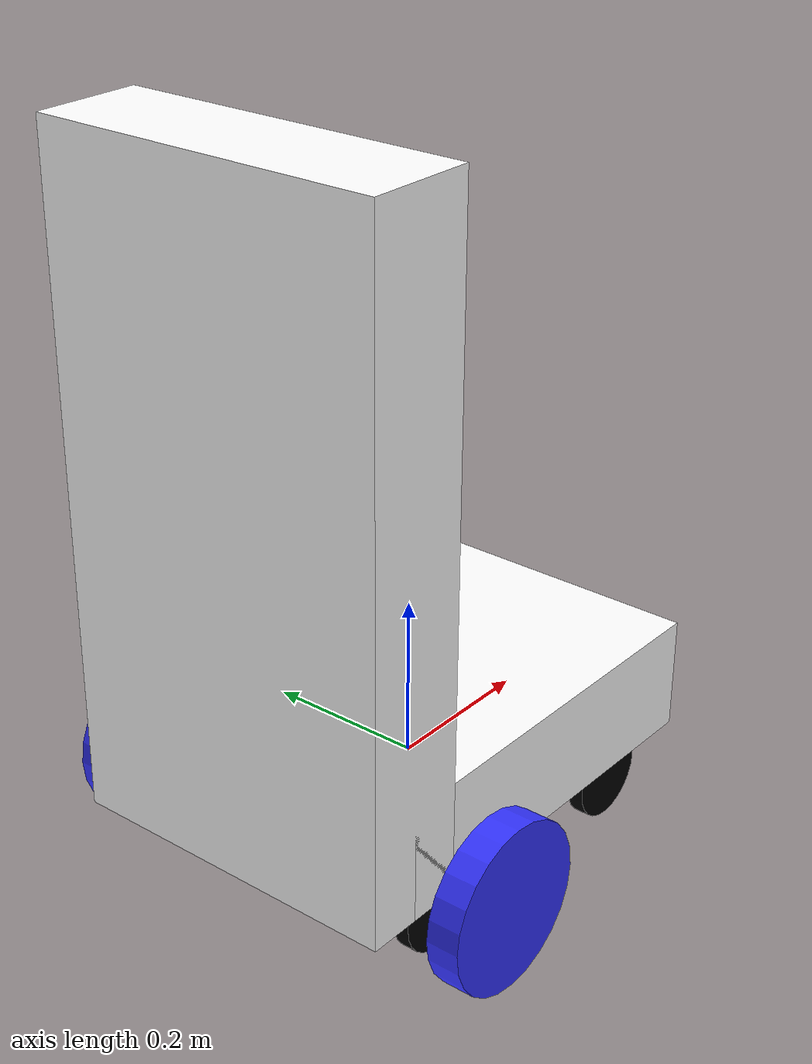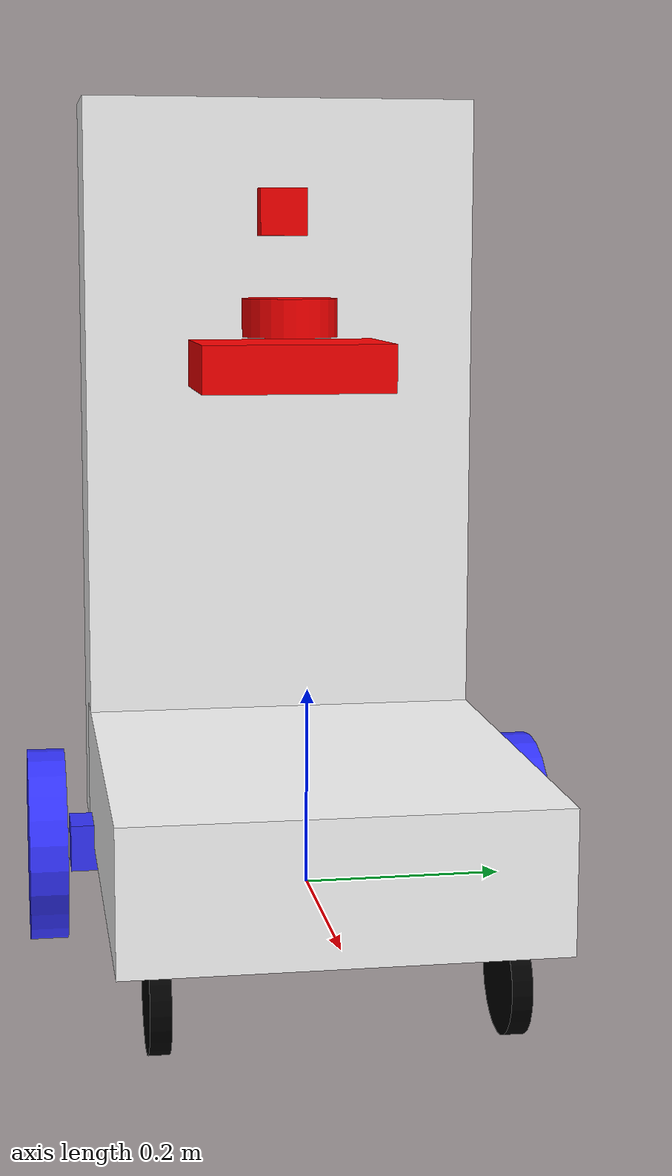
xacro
<?xml version="1.0"?>
<robot xmlns:xacro="http://www.ros.org/wiki/xacro" name="robot">

    <!-- INCLUDE -->
    <xacro:include filename="settings/materials.xacro" />
    <xacro:include filename="settings/frame_properties.xacro" />
    <xacro:include filename="inertial_macros.xacro" />

    <!-- PARAMS -->
    <xacro:arg name="use_ros2_control" default="true" />
    <xacro:arg name="sim_mode" default="false" />

    <xacro:if value="$(arg use_ros2_control)">
        <xacro:include filename="ros2_control.xacro" />
    </xacro:if>
    <xacro:unless value="$(arg use_ros2_control)">
        <xacro:include filename="gazebo_control.xacro" />
    </xacro:unless>

    <xacro:include filename="robot_core.xacro" />
    <xacro:include filename="lidar.xacro" />
    <xacro:include filename="depth_camera.xacro" />

</robot>

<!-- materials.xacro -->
<robot xmlns:xacro="http://www.ros.org/wiki/xacro">

  <!-- material -->
  <material name="white">
    <color rgba="1 1 1 1" />
  </material>

  <material name="orange">
    <color rgba="1 0.3 0.1 1" />
  </material>

  <material name="blue">
    <color rgba="0.2 0.2 1 1" />
  </material>

  <material name="black">
    <color rgba="0 0 0 1" />
  </material>

  <material name="red">
    <color rgba="1 0 0 1" />
  </material>

</robot>

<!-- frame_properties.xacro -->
<robot xmlns:xacro="http://www.ros.org/wiki/xacro">

  <!-- CHASSIS-->
  <xacro:property name="x_chassis_size" value="0.5" />
  <xacro:property name="y_chassis_size" value="0.42" />
  <xacro:property name="z_chassis_size" value="0.14" />
  <xacro:property name="chassis_mass" value="4.4" />
  <xacro:property name="x_handle_size" value="0.13" />
  <xacro:property name="y_handle_size" value="0.42" />
  <xacro:property name="z_handle_size" value="0.8" />
  <xacro:property name="handle_mass" value="3" />

  <!-- DRIVE WHEELS-->
  <xacro:property name="drive_wheel_radius" value="0.102" />
  <xacro:property name="drive_wheel_length" value="0.04" />
  <xacro:property name="drive_wheel_mass" value="2" />

  <!-- MOTOR -->
  <xacro:property name="x_motor_size" value="0.05" />
  <xacro:property name="y_motor_size" value="0.05" />
  <xacro:property name="z_motor_size" value="0.05" />
  <xacro:property name="motor_mass" value="1" />

  <!-- CASTER WHEELS-->
  <xacro:property name="caster_wheel_radius" value="0.055" />
  <xacro:property name="caster_wheel_length" value="0.02" />
  <xacro:property name="caster_wheel_mass" value="1" />

  <!-- LIDAR -->
  <xacro:property name="x_lidar_base_size" value="0.15" />
  <xacro:property name="y_lidar_base_size" value="0.20" />
  <xacro:property name="z_lidar_base_size" value="0.05" />
  <xacro:property name="lidar_frame_radius" value="0.05" />
  <xacro:property name="lidar_frame_length" value="0.04" />
  <xacro:property name="lidar_mass" value="0.1" />
  <xacro:property name="lidar_samples" value="360" />
  <xacro:property name="lidar_resolution" value="0.0174533" />
  <xacro:property name="lidar_min_angle" value="-1.57" />
  <xacro:property name="lidar_max_angle" value="1.57" />
  <xacro:property name="lidar_min_range" value="0.12" />
  <xacro:property name="lidar_max_range" value="3.5" />
  <xacro:property name="lidar_range_resolution" value="0.01" />

  <!-- CAMERA -->
  <xacro:property name="x_camera_size" value="0.05" />
  <xacro:property name="y_camera_size" value="0.05" />
  <xacro:property name="z_camera_size" value="0.05" />
  <xacro:property name="camera_mass" value="0.1" />

  <xacro:property name="horizontal_fov" value="1.089" />
  <xacro:property name="camera_frame_width" value="1280" />
  <xacro:property name="camera_frame_height" value="720" />
  <xacro:property name="min_view_range" value="0.05" />
  <xacro:property name="max_view_range" value="8.0" />
  <!-- DEPTH-->
  <xacro:property name="min_depth" value="0.1" />
  <xacro:property name="max_depth" value="100.0" />

  <!-- SPEED -->
  <xacro:property name="max_wheel_torque" value="0.883" />
  <xacro:property name="max_acceleration" value="1.48" />

  <!-- ROTATION SPEED -->
  <xacro:property name="wheel_max_speed" value="1.848" />
  <xacro:property name="wheel_min_speed" value="-1.848" />

</robot>

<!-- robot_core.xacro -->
<robot xmlns:xacro="http://www.ros.org/wiki/xacro">

  <!-- BASE LINK-->
  <link name="base_link">
  </link>

  <!-- BASE_FOOTPRINT LINK-->

  <joint name="base_footprint_joint" type="fixed">
    <parent link="base_link" />
    <child link="base_footprint" />
    <origin xyz="0 0 0" />
  </joint>

  <link name="base_footprint">
  </link>

  <!-- CHASSIS LINK -->
  <joint name="chassis_joint" type="fixed">
    <parent link="base_link" />
    <child link="chassis" />
    <origin xyz="0 0 0 " />
  </joint>

  <link name="chassis">
    <visual>
      <origin xyz="0 0 ${z_chassis_size/2}" />
      <geometry>
        <box size="${x_chassis_size} ${y_chassis_size} ${z_chassis_size}" />
      </geometry>
      <material name="white" />
    </visual>

    <collision>
      <origin xyz="0 0 ${z_chassis_size/2}" />
      <geometry>
        <box size="${x_chassis_size} ${y_chassis_size} ${z_chassis_size}" />
      </geometry>
    </collision>

    <xacro:inertial_box mass="${chassis_mass}" x="${x_chassis_size}" y="${y_chassis_size}"
      z="${z_chassis_size}">
      <origin xyz="0 0 ${z_chassis_size/2}" />
    </xacro:inertial_box>

  </link>

  <!-- HANDLE -->
  <joint name="handle_joint" type="fixed">
    <parent link="chassis" />
    <child link="handle" />
    <origin xyz="${-x_chassis_size/2} 0 0" />
  </joint>

  <link name="handle">
    <visual>
      <origin xyz="0 0 ${z_handle_size/2}" />
      <geometry>
        <box size="${x_handle_size} ${y_handle_size} ${z_handle_size}" />
      </geometry>
      <material name="white" />
    </visual>

    <collision>
      <origin xyz="0 0 ${z_handle_size/2}" />
      <geometry>
        <box size="${x_handle_size} ${y_handle_size} ${z_handle_size}" />
      </geometry>
    </collision>

    <xacro:inertial_box mass="${handle_mass}" x="${x_handle_size}" y="${y_handle_size}"
      z="${z_handle_size}">
      <origin xyz="0 0 0" />
    </xacro:inertial_box>

  </link>

  <!-- LEFT MOTOR -->
  <joint name="left_motor_joint" type="fixed">
    <parent link="base_link" />
    <child link="left_motor" />
    <origin xyz="-${2*x_chassis_size /6} -${y_chassis_size/2} 0"
      rpy="0 0 0" />
    <axis xyz="0 0 -1" />
  </joint>

  <link name="left_motor">
    <visual>
      <geometry>
        <box size="${x_motor_size} ${y_motor_size} ${z_motor_size}" />
      </geometry>
      <material name="blue" />
    </visual>

    <collision>
      <origin xyz="0 0 ${z_motor_size/2}" />
      <geometry>
        <box size="${x_motor_size} ${y_motor_size} ${z_motor_size}" />
      </geometry>
    </collision>

    <xacro:inertial_box mass="${motor_mass}" x="${x_motor_size}" y="${y_motor_size}"
      z="${z_motor_size}">
      <origin xyz="0 0 ${z_motor_size/2}" />
    </xacro:inertial_box>

  </link>

  <!-- LEFT WHEEL -->
  <joint name="left_wheel_joint" type="continuous">
    <parent link="left_motor" />
    <child link="left_wheel" />
    <origin xyz="0 ${-y_motor_size} 0"
      rpy="-${pi/2} 0 0" />
    <axis xyz="0 0 1" />
  </joint>

  <link name="left_wheel">
    <visual>
      <geometry>
        <cylinder radius="${drive_wheel_radius}" length="${drive_wheel_length}" />
      </geometry>
      <material name="blue" />
    </visual>

    <collision>
      <geometry>
        <cylinder radius="${drive_wheel_radius}" length="${drive_wheel_length}" />
      </geometry>
    </collision>

    <xacro:inertial_cylinder mass="${drive_wheel_mass}" length="${drive_wheel_length}"
      radius="${drive_wheel_radius}">
      <origin xyz="0 0 0" rpy="0 0 0" />
    </xacro:inertial_cylinder>
  </link>

  <gazebo reference="left_wheel">
    <material>Gazebo/Blue</material>
  </gazebo>

  <!-- RIGHT MOTOR -->
  <joint name="right_motor_joint" type="fixed">
    <parent link="base_link" />
    <child link="right_motor" />
    <origin xyz="-${2*x_chassis_size /6} ${y_chassis_size/2} 0"
      rpy="0 0 0" />
    <axis xyz="0 0 -1" />
  </joint>

  <link name="right_motor">
    <visual>
      <geometry>
        <box size="${x_motor_size} ${y_motor_size} ${z_motor_size}" />
      </geometry>
      <material name="blue" />
    </visual>

    <collision>
      <origin xyz="0 0 ${z_motor_size/2}" />
      <geometry>
        <box size="${x_motor_size} ${y_motor_size} ${z_motor_size}" />
      </geometry>
    </collision>

    <xacro:inertial_box mass="${motor_mass}" x="${x_motor_size}" y="${y_motor_size}"
      z="${z_motor_size}">
      <origin xyz="0 0 ${z_motor_size/2}" />
    </xacro:inertial_box>

  </link>

  <!-- RIGHT WHEEL -->
  <joint name="right_wheel_joint" type="continuous">
    <parent link="right_motor" />
    <child link="right_wheel" />
    <origin xyz="0 ${y_motor_size} 0"
      rpy="${pi/2} 0 0" />
    <axis xyz="0 0 -1" />
  </joint>

  <link name="right_wheel">
    <visual>
      <geometry>
        <cylinder radius="${drive_wheel_radius}" length="${drive_wheel_length}" />
      </geometry>
      <material name="blue" />
    </visual>

    <collision>
      <geometry>
        <cylinder radius="${drive_wheel_radius}" length="${drive_wheel_length}" />
      </geometry>
    </collision>

    <xacro:inertial_cylinder mass="${drive_wheel_mass}" length="${drive_wheel_length}"
      radius="${drive_wheel_radius}">
      <origin xyz="0 0 0" rpy="0 0 0" />
    </xacro:inertial_cylinder>

  </link>

  <gazebo reference="right_wheel">
    <material>Gazebo/Blue</material>
  </gazebo>

  <!-- FRONT LEFT CASTER WHEELS -->
  <joint name="front_left_caster_wheel_joint" type="fixed">
    <parent link="base_link" />
    <child link="front_left_caster_wheel" />
    <origin
      xyz="${2*x_chassis_size /6} ${2*y_chassis_size/5} -${drive_wheel_radius - caster_wheel_radius}"
      rpy="-${pi/2} 0 0" />
    <axis xyz="0 0 1" />
  </joint>

  <link name="front_left_caster_wheel">
    <visual>
      <geometry>
        <cylinder radius="${caster_wheel_radius}" length="${caster_wheel_length}" />
      </geometry>
      <material name="black" />
    </visual>

    <collision>
      <geometry>
        <cylinder radius="${caster_wheel_radius}" length="${caster_wheel_length}" />
      </geometry>
    </collision>

    <xacro:inertial_cylinder mass="${caster_wheel_mass}" length="${caster_wheel_length}"
      radius="${caster_wheel_radius}">
      <origin xyz="0 0 0" rpy="0 0 0" />
    </xacro:inertial_cylinder>

  </link>

  <gazebo reference="front_left_caster_wheel">
    <material>Gazebo/Black</material>
    <mu1 value="0.001" />
    <mu2 value="0.001" />
  </gazebo>

  <!-- FRONT RIGHT CASTER WHEELS -->
  <joint name="front_right_caster_wheel_joint" type="fixed">
    <parent link="base_link" />
    <child link="front_right_caster_wheel" />
    <origin
      xyz="${2*x_chassis_size /6} -${2*y_chassis_size/5} -${drive_wheel_radius - caster_wheel_radius}"
      rpy="${pi/2} 0 0" />
    <axis xyz="0 0 -1" />
  </joint>

  <link name="front_right_caster_wheel">
    <visual>
      <geometry>
        <cylinder radius="${caster_wheel_radius}" length="${caster_wheel_length}" />
      </geometry>
      <material name="black" />
    </visual>

    <collision>
      <geometry>
        <cylinder radius="${caster_wheel_radius}" length="${caster_wheel_length}" />
      </geometry>
    </collision>

    <xacro:inertial_cylinder mass="${caster_wheel_mass}" length="${caster_wheel_length}"
      radius="${caster_wheel_radius}">
      <origin xyz="0 0 0" rpy="0 0 0" />
    </xacro:inertial_cylinder>

  </link>

  <gazebo reference="front_right_caster_wheel">
    <material>Gazebo/Black</material>
    <mu1 value="0.001" />
    <mu2 value="0.001" />
  </gazebo>

  <!-- BACK LEFT CASTER WHEELS -->
  <joint name="back_left_caster_wheel_joint" type="fixed">
    <parent link="base_link" />
    <child link="back_left_caster_wheel" />
    <origin
      xyz="-${2*x_chassis_size /6} ${2*y_chassis_size/5} -${drive_wheel_radius - caster_wheel_radius}"
      rpy="-${pi/2} 0 0" />
    <axis xyz="0 0 1" />
  </joint>

  <link name="back_left_caster_wheel">
    <visual>
      <geometry>
        <cylinder radius="${caster_wheel_radius}" length="${caster_wheel_length}" />
      </geometry>
      <material name="black" />
    </visual>

    <collision>
      <geometry>
        <cylinder radius="${caster_wheel_radius}" length="${caster_wheel_length}" />
      </geometry>
    </collision>

    <xacro:inertial_cylinder mass="${caster_wheel_mass}" length="${caster_wheel_length}"
      radius="${caster_wheel_radius}">
      <origin xyz="0 0 0" rpy="0 0 0" />
    </xacro:inertial_cylinder>

  </link>

  <gazebo reference="back_left_caster_wheel">
    <material>Gazebo/Black</material>
    <mu1 value="0.001" />
    <mu2 value="0.001" />
  </gazebo>

  <!-- BACK RIGHT CASTER WHEELS -->
  <joint name="back_right_caster_wheel_joint" type="fixed">
    <parent link="base_link" />
    <child link="back_right_caster_wheel" />
    <origin
      xyz="-${2*x_chassis_size /6} -${2*y_chassis_size/5} -${drive_wheel_radius - caster_wheel_radius}"
      rpy="${pi/2} 0 0" />
    <axis xyz="0 0 -1" />
  </joint>

  <link name="back_right_caster_wheel">
    <visual>
      <geometry>
        <cylinder radius="${caster_wheel_radius}" length="${caster_wheel_length}" />
      </geometry>
      <material name="black" />
    </visual>

    <collision>
      <geometry>
        <cylinder radius="${caster_wheel_radius}" length="${caster_wheel_length}" />
      </geometry>
    </collision>

    <xacro:inertial_cylinder mass="${caster_wheel_mass}" length="${caster_wheel_length}"
      radius="${caster_wheel_radius}">
      <origin xyz="0 0 0" rpy="0 0 0" />
    </xacro:inertial_cylinder>

  </link>

  <gazebo reference="back_right_caster_wheel">
    <material>Gazebo/Black</material>
    <mu1 value="0.001" />
    <mu2 value="0.001" />
  </gazebo>
</robot>

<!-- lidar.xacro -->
<robot xmlns:xacro="http://www.ros.org/wiki/xacro">

  <!-- LASER BASE -->
  <joint name="laser_base_joint" type="fixed">
    <parent link="handle" />
    <child link="laser_base_frame" />
    <origin xyz="${x_handle_size} 0 ${13*z_handle_size/20}" rpy="0 0 0 " />
  </joint>

  <link name="laser_base_frame">
    <visual>
      <geometry>
        <box size="${x_lidar_base_size} ${y_lidar_base_size} ${z_lidar_base_size}" />
      </geometry>
      <material name="red" />
    </visual>
    <collision>
      <geometry>
        <box size="${x_lidar_base_size} ${y_lidar_base_size} ${z_lidar_base_size}" />
      </geometry>
    </collision>
    <xacro:inertial_box mass="${motor_mass}" x="${x_lidar_base_size}" y="${y_lidar_base_size}"
      z="${z_lidar_base_size}">
      <origin xyz="0 0 0" />
    </xacro:inertial_box>
  </link>

  <gazebo reference="laser_base_frame">
    <material>Gazebo/Blue</material>
  </gazebo>

  <!-- LASER -->
  <joint name="laser_joint" type="fixed">
    <parent link="laser_base_frame" />
    <child link="laser_frame" />
    <origin xyz="0 0 ${z_lidar_base_size}" rpy="0 0 0 " />
  </joint>

  <link name="laser_frame">
    <visual>
      <geometry>
        <cylinder radius="${lidar_frame_radius}" length="${lidar_frame_length}" />
      </geometry>
      <material name="red" />
    </visual>
    <collision>
      <geometry>
        <cylinder radius="${lidar_frame_radius}" length="${lidar_frame_length}" />
      </geometry>
    </collision>
    <xacro:inertial_cylinder mass="${lidar_mass}" radius="${lidar_frame_radius}"
      length="${lidar_frame_length}">
      <origin xyz="0 0 0" rpy="0 0 0" />
    </xacro:inertial_cylinder>
  </link>

  <gazebo reference="laser_frame">
    <material>Gazebo/Red</material>
    <sensor name="laser" type="ray">
      <pose>0 0 0 0 0 0</pose>
      <visualize>true</visualize>
      <update_rate>10</update_rate>
      <ray>
        <scan>
          <horizontal>
            <samples>${lidar_samples}</samples>
            <resolution>${lidar_resolution}</resolution>
            <min_angle>${lidar_min_angle}</min_angle>
            <max_angle>${lidar_max_angle}</max_angle>
          </horizontal>
        </scan>
        <range>
          <min>${lidar_min_range}</min>
          <max>${lidar_max_range}</max>
          <resolution>${lidar_range_resolution}</resolution>
        </range>
      </ray>

      <plugin name="laser_controller" filename="libgazebo_ros_ray_sensor.so">
        <ros>
          <argument>~/out:=scan</argument>
        </ros>
        <output_type>sensor_msgs/LaserScan</output_type>
        <frame_name>laser_frame</frame_name>
      </plugin>
    </sensor>
  </gazebo>

</robot>

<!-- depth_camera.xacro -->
<robot xmlns:xacro="http://www.ros.org/wiki/xacro">

  <!-- CAMERA -->
  <joint name="camera_joint" type="fixed">
    <parent link="handle" />
    <child link="camera_link" />
    <origin xyz="${x_handle_size/2} 0 ${17*z_handle_size/20}" rpy="0 0 0 " />
  </joint>

  <link name="camera_link">
    <visual>
      <geometry>
        <box size="${x_camera_size} ${y_camera_size} ${z_camera_size}" />
      </geometry>
      <material name="red" />
    </visual>
    <collision>
      <geometry>
        <box size="${x_camera_size} ${y_camera_size} ${z_camera_size}" />
      </geometry>
    </collision>
    <xacro:inertial_box mass="${camera_mass}" x="${x_camera_size}" y="${y_camera_size}"
      z="${z_camera_size}">
      <origin xyz="0 0 0" rpy="0 0 0" />
    </xacro:inertial_box>
  </link>

  <!-- CAMERA(OPTICAL)-->
  <joint name="camera_optical_joint" type="fixed">
    <parent link="camera_link" />
    <child link="camera_link_optical" />
    <origin xyz="0 0 0" rpy="${-pi/2} 0 ${-pi/2}" />
  </joint>

  <link name="camera_link_optical"></link>

  <gazebo reference="camera_link">
    <material>Gazebo/Red</material>
    <sensor name="camera" type="depth">
      <pose>0 0 0 0 0 0</pose>
      <visualize>true</visualize>
      <update_rate>10</update_rate>
      <camera>
        <horizontal_fov>${horizontal_fov}</horizontal_fov>
        <image>
          <format>B8G8R8</format>
          <width>${camera_frame_width}</width>
          <height>${camera_frame_height}</height>
        </image>
        <clip>
          <near>${min_view_range}</near>
          <far>${max_view_range}</far>
        </clip>
      </camera>

      <plugin name="camera_controller" filename="libgazebo_ros_camera.so">
        <frame_name>camera_link_optical</frame_name>
        <min_depth>${min_depth}</min_depth>
        <max_depth>${max_depth}</max_depth>
      </plugin>
    </sensor>
  </gazebo>

</robot>
